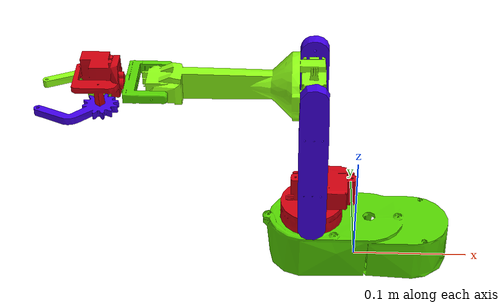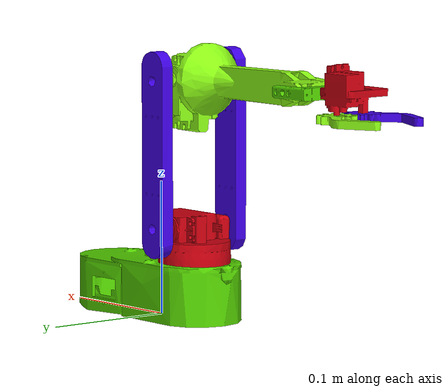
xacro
<?xml version="1.0" ?>

<robot name="my3darm" xmlns:xacro="http://www.ros.org/wiki/xacro">
  <material name="orange">
    <color rgba="84 211 0 1" />
  </material>
  <material name="red">
    <color rgba="207 0 15 1" />
  </material>
  <material name="malachita">
    <color rgba="64 0 230 1" />
  </material>
  <material name="electric_indigo">
    <color rgba="140 252 20 1" />
  </material>

  <link name="base_link">
      <visual>
        <origin rpy="0 0 0" xyz="0 0 0.0225" />
        <geometry>
          <mesh filename="package://my3dbotarm_description/meshes/Base_reduced.stl" scale="0.001 0.001 0.001" />
        </geometry>
	      <material name="orange" />
      </visual>
      <collision>
        <origin rpy="0 0 0" xyz="0 0 0.0225" />
        <geometry>
          <mesh filename="package://my3dbotarm_description/meshes/Base_reduced.stl" scale ="0.001 0.001 0.001"/>
        </geometry>
      </collision>
  </link>

  <joint name="base_link__link_01" type="revolute">
    <axis xyz="0 0 1"/>
    <limit effort="1000.0" lower="-1.5" upper="1.5" velocity="0.5"/>
    <origin rpy="0 0 0" xyz="-0.0386 0 0.0425"/>
    <parent link="base_link"/>
    <child link="link_01"/>
  </joint>

  <link name="link_01">
    <visual>
      <origin rpy="0 0 0" xyz="0 0 0.01875" />
      <geometry>
        <mesh filename="package://my3dbotarm_description/meshes/Link1_reduced.stl" scale="0.001 0.001 0.001" />
      </geometry>
      <material name="red" />
    </visual>
    <collision>
      <origin rpy="0 0 0" xyz="0 0 0.01875" />
      <geometry>
        <mesh filename="package://my3dbotarm_description/meshes/Link1_reduced.stl" scale="0.001 0.001 0.001" />
      </geometry>
    </collision>
  </link>

  <joint name="link_01__link_02" type="revolute">
    <axis xyz="0 1 0"/>
    <limit effort="1000.0" lower="-1.5" upper="1.5" velocity="0.5"/>
    <origin rpy="0 0 0" xyz="0 0 0.02500431"/>
    <parent link="link_01"/>
    <child link="link_02"/>
  </joint>

  <link name="link_02">
    <visual>
      <origin rpy="0 0 0" xyz="0 0 0.058323" />
      <geometry>
        <mesh filename="package://my3dbotarm_description/meshes/Link2_reduced.stl" scale="0.001 0.001 0.001" />
      </geometry>
      <material name="malachita" />
    </visual>
    <collision>
      <origin rpy="0 0 0" xyz="0 0 0.058323" />
      <geometry>
        <mesh filename="package://my3dbotarm_description/meshes/Link2_reduced.stl" scale="0.001 0.001 0.001" />
      </geometry>
    </collision>
  </link>

  <joint name="link_02__link_03" type="revolute">
    <axis xyz="0 1 0"/>
    <limit effort="1000.0" lower="-1.5" upper="1.5" velocity="0.5"/>
    <origin rpy="0 0 0" xyz="0 0 0.1073"/>
    <parent link="link_02"/>
    <child link="link_03"/>
  </joint>

  <link name="link_03">
    <visual>
      <origin rpy="0 0 0" xyz="-0.065 0 0" />
      <geometry>
        <mesh filename="package://my3dbotarm_description/meshes/Link3_reduced.stl" scale="0.001 0.001 0.001" />
      </geometry>
      <material name="electric_indigo" />
    </visual>
    <collision>
      <origin rpy="0 0 0" xyz="-0.065 0 0" />
      <geometry>
        <mesh filename="package://my3dbotarm_description/meshes/Link3_reduced.stl" scale="0.001 0.001 0.001" />
      </geometry>
    </collision>
  </link>

  <joint name="link_03__link_04" type="revolute">
    <axis xyz="0 1 0"/>
    <limit effort="1000.0" lower="-1.5" upper="1.5" velocity="0.5"/>
    <origin rpy="0 0 0" xyz="-0.1287 0 0.0057"/>
    <parent link="link_03"/>
    <child link="link_04"/>
  </joint>

  <link name="link_04">
    <visual>
      <origin rpy="0 0 0" xyz="-0.005 0 0" />
      <geometry>
        <mesh filename="package://my3dbotarm_description/meshes/Link4_reduced.stl" scale="0.001 0.001 0.001" />
      </geometry>
      <material name="orange" />
    </visual>
    <collision>
      <origin rpy="0 0 0" xyz="-0.005 0 0" />
      <geometry>
        <mesh filename="package://my3dbotarm_description/meshes/Link4_reduced.stl" scale="0.001 0.001 0.001" />
      </geometry>
    </collision>
  </link>

  <joint name="link_04__link_05" type="revolute">
    <axis xyz="1 0 0"/>
    <limit effort="1000.0" lower="-1.5" upper="1.5" velocity="0.5"/>
    <origin rpy="0 0 0" xyz="-0.04327 0 0"/>
    <parent link="link_04"/>
    <child link="link_05"/>
  </joint>

  <link name="link_05">
    <visual>
      <origin rpy="0 0 0" xyz="0 0.00005 0.00416" />
      <geometry>
        <mesh filename="package://my3dbotarm_description/meshes/Link5_reduced.stl" scale="0.001 0.001 0.001" />
      </geometry>
      <material name="red" />
    </visual>
    <collision>
      <origin rpy="0 0 0" xyz="0 0.00005 0.00416" />
      <geometry>
        <mesh filename="package://my3dbotarm_description/meshes/Link5_reduced.stl" scale="0.001 0.001 0.001" />
      </geometry>
    </collision>
  </link>

  <joint name="link_05__gripper_01" type="revolute">
    <axis xyz="0 0 1"/>
    <limit effort="1000.0" lower="-1.5" upper="1.5" velocity="0.5"/>
    <origin rpy="0 0 0" xyz="0 -0.01225 -0.01605"/>
    <parent link="link_05"/>
    <child link="gripper_01"/>
  </joint>

  <link name="gripper_01">
    <visual>
      <origin rpy="0 0 0" xyz="-0.019 -0.004 0" />
      <geometry>
        <mesh filename="package://my3dbotarm_description/meshes/Gripper1_reduced.stl" scale="0.001 0.001 0.001" />
      </geometry>
      <material name="malachita" />
    </visual>
    <collision>
      <origin rpy="0 0 0" xyz="-0.019 -0.004 0" />
      <geometry>
        <mesh filename="package://my3dbotarm_description/meshes/Gripper1_reduced.stl" scale="0.001 0.001 0.001" />
      </geometry>
    </collision>
  </link>

  <joint name="link_05__gripper_02" type="revolute">
    <axis xyz="0 0 1"/>
    <limit effort="1000.0" lower="-1.5" upper="1.5" velocity="0.5"/>
    <origin rpy="0 0 0" xyz="0 0.01225 -0.01605"/>
    <parent link="link_05"/>
    <child link="gripper_02"/>
  </joint>

  <link name="gripper_02">
    <visual>
      <origin rpy="0 0 0" xyz="-0.019 0.0039 0" />
      <geometry>
        <mesh filename="package://my3dbotarm_description/meshes/Gripper2_reduced.stl" scale="0.001 0.001 0.001" />
      </geometry>
      <material name="electric_indigo" />
    </visual>
    <collision>
      <origin rpy="0 0 0" xyz="-0.019 0.0039 0" />
      <geometry>
        <mesh filename="package://my3dbotarm_description/meshes/Gripper2_reduced.stl" scale="0.001 0.001 0.001" />
      </geometry>
    </collision>
  </link>

</robot>
